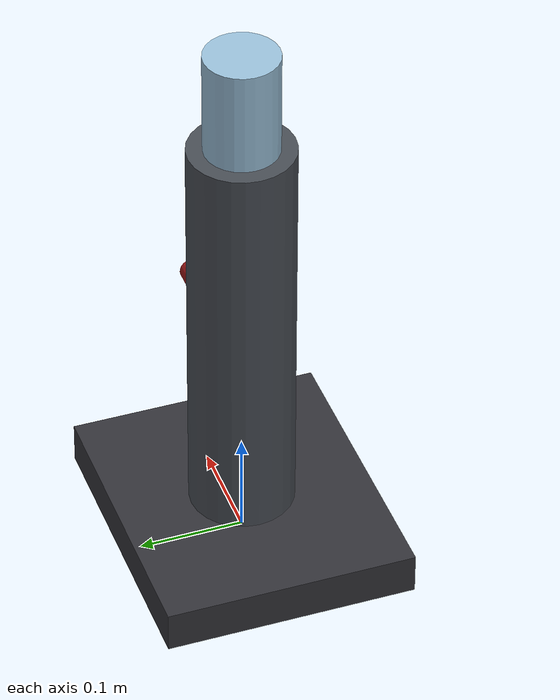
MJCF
<?xml version="1.0" encoding="utf-8"?>
<mujoco model="real_lab_leiden_university_cryoem">
  <compiler angle="radian" autolimits="true"/>
  <default>
    <default class="body"><geom contype="1" conaffinity="1"/></default>
  </default>
  <worldbody>
    <body name="base">
      <geom type="box" size="0.14 0.12 0.02" pos="0 0 0.02" rgba="0.2 0.2 0.22 1" class="body"/>
      <geom type="cylinder" size="0.05 0.2" pos="0 0 0.24" rgba="0.28 0.3 0.33 1" class="body"/>
      <geom type="cylinder" size="0.035 0.05" pos="0 0 0.49" rgba="0.6 0.75 0.85 1" class="body"/>
      <body name="specimen_airlock" pos="0.05 0.0 0.2">
        <joint name="specimen_airlock_joint" type="hinge" axis="0 0 1" range="0 1.3" damping="0.5" frictionloss="0.2"/>
  <geom type="cylinder" size="0.012 0.06" pos="0.03 0 0" rgba="0.65 0.1 0.1 1" class="body" quat="0.707 0 0.707 0"/>
      </body>
    </body>
  </worldbody>
</mujoco>
